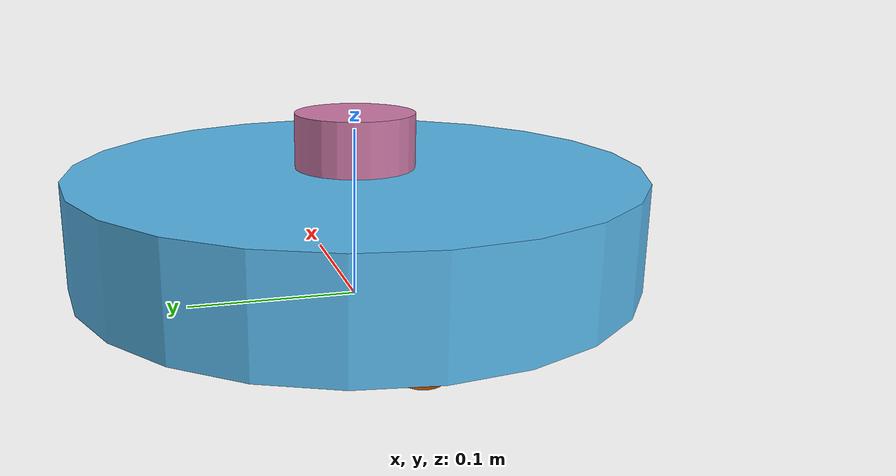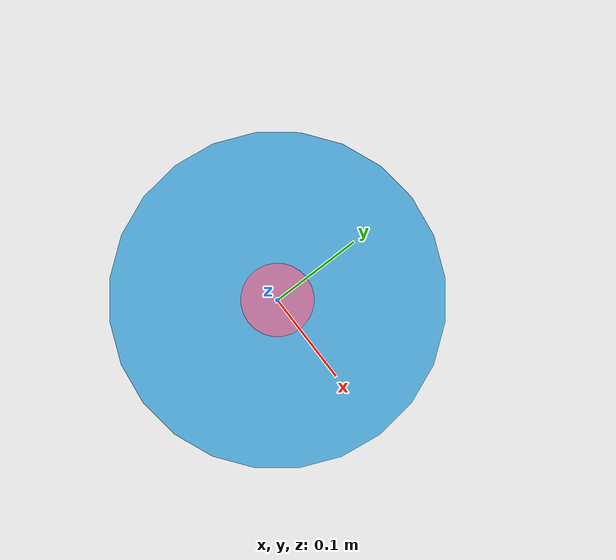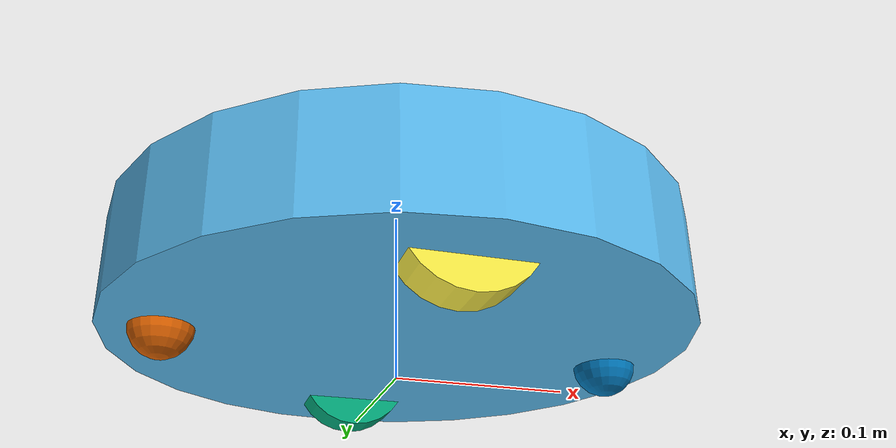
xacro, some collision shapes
<?xml version="1.0"?>
<robot name="roomba" xmlns:xacro="http://www.ros.org/wiki/xacro">

  <xacro:property name="PI" value="3.1415926535897931"/>

  <!-- Create 2 OI spec -->
  <xacro:property name="wheel_separation" value="0.235"/>
  <xacro:property name="wheel_radius" value="0.036"/>
  <xacro:property name="wheel_width" value="0.024"/>
  <xacro:property name="wheel_mass" value="0.1"/>

  <xacro:property name="base_radius" value="0.16495"/>
  <xacro:property name="base_height" value="0.0611632"/>
  <xacro:property name="base_mass" value="3.3"/>
  <!-- base_link sits this high above the floor (same as create_description) -->
  <xacro:property name="base_z" value="0.017"/>

  <xacro:property name="caster_radius" value="0.018"/>
  <xacro:property name="caster_x" value="0.13"/>

  <xacro:macro name="cylinder_inertia" params="m r h">
    <inertia ixx="${m * (3 * r * r + h * h) / 12}" ixy="0" ixz="0"
             iyy="${m * (3 * r * r + h * h) / 12}" iyz="0"
             izz="${m * r * r / 2}"/>
  </xacro:macro>

  <link name="base_footprint"/>

  <link name="base_link">
    <inertial>
      <origin xyz="0 0 ${base_height / 2}"/>
      <mass value="${base_mass}"/>
      <xacro:cylinder_inertia m="${base_mass}" r="${base_radius}" h="${base_height}"/>
    </inertial>
    <visual>
      <origin xyz="0 0 0.0308"/>
      <geometry>
        <mesh filename="package://create_description/meshes/create_2.dae"/>
      </geometry>
    </visual>
    <collision>
      <origin xyz="0 0 0.0308"/>
      <geometry>
        <cylinder radius="${base_radius}" length="${base_height}"/>
      </geometry>
    </collision>
  </link>

  <joint name="base_footprint_joint" type="fixed">
    <origin xyz="0 0 ${base_z}"/>
    <parent link="base_footprint"/>
    <child link="base_link"/>
  </joint>

  <xacro:macro name="drive_wheel" params="prefix y">
    <link name="${prefix}_wheel_link">
      <inertial>
        <mass value="${wheel_mass}"/>
        <!-- cylinder axis is along y after the visual rotation -->
        <inertia ixx="${wheel_mass * (3 * wheel_radius * wheel_radius + wheel_width * wheel_width) / 12}"
                 ixy="0" ixz="0"
                 iyy="${wheel_mass * wheel_radius * wheel_radius / 2}" iyz="0"
                 izz="${wheel_mass * (3 * wheel_radius * wheel_radius + wheel_width * wheel_width) / 12}"/>
      </inertial>
      <visual>
        <origin rpy="${PI / 2} 0 0"/>
        <geometry>
          <cylinder radius="${wheel_radius}" length="${wheel_width}"/>
        </geometry>
      </visual>
      <collision>
        <geometry>
          <sphere radius="${wheel_radius}"/>
        </geometry>
      </collision>
    </link>

    <joint name="${prefix}_wheel_joint" type="continuous">
      <origin xyz="0 ${y} ${wheel_radius - base_z}"/>
      <parent link="base_link"/>
      <child link="${prefix}_wheel_link"/>
      <axis xyz="0 1 0"/>
    </joint>

    <gazebo reference="${prefix}_wheel_link">
      <mu1>1.0</mu1>
      <mu2>1.0</mu2>
    </gazebo>
  </xacro:macro>

  <xacro:drive_wheel prefix="left" y="${wheel_separation / 2}"/>
  <xacro:drive_wheel prefix="right" y="${-wheel_separation / 2}"/>

  <!-- Frictionless spheres front and rear keep the body level -->
  <xacro:macro name="caster" params="prefix x">
    <link name="${prefix}_caster_link">
      <inertial>
        <mass value="0.01"/>
        <inertia ixx="1e-6" ixy="0" ixz="0" iyy="1e-6" iyz="0" izz="1e-6"/>
      </inertial>
      <visual>
        <geometry>
          <sphere radius="${caster_radius}"/>
        </geometry>
      </visual>
      <collision>
        <geometry>
          <sphere radius="${caster_radius}"/>
        </geometry>
      </collision>
    </link>

    <joint name="${prefix}_caster_joint" type="fixed">
      <origin xyz="${x} 0 ${caster_radius - base_z}"/>
      <parent link="base_link"/>
      <child link="${prefix}_caster_link"/>
    </joint>

    <gazebo reference="${prefix}_caster_link">
      <mu1>0.0</mu1>
      <mu2>0.0</mu2>
    </gazebo>
  </xacro:macro>

  <xacro:caster prefix="front" x="${caster_x}"/>
  <xacro:caster prefix="rear" x="${-caster_x}"/>

  <!-- YDLIDAR X4 Pro: 360 deg, 0.12-10 m, ~5k samples/s. Mount pose is a placeholder
       until the 3D-printed mount exists; measure it and update these. -->
  <xacro:property name="laser_x" value="0.0"/>
  <xacro:property name="laser_z" value="0.11"/>
  <xacro:property name="laser_rate" value="7"/>
  <xacro:property name="laser_samples" value="720"/>

  <link name="laser_link">
    <inertial>
      <mass value="0.18"/>
      <inertia ixx="1e-4" ixy="0" ixz="0" iyy="1e-4" iyz="0" izz="1e-4"/>
    </inertial>
    <visual>
      <origin xyz="0 0 -0.017"/>
      <geometry>
        <cylinder radius="0.035" length="0.034"/>
      </geometry>
    </visual>
    <collision>
      <origin xyz="0 0 -0.017"/>
      <geometry>
        <cylinder radius="0.035" length="0.034"/>
      </geometry>
    </collision>
  </link>

  <joint name="laser_joint" type="fixed">
    <origin xyz="${laser_x} 0 ${laser_z - base_z}"/>
    <parent link="base_link"/>
    <child link="laser_link"/>
  </joint>

  <gazebo reference="laser_link">
    <sensor name="lidar" type="gpu_lidar">
      <ignition_frame_id>laser_link</ignition_frame_id>
      <topic>/scan</topic>
      <update_rate>${laser_rate}</update_rate>
      <always_on>true</always_on>
      <visualize>false</visualize>
      <lidar>
        <scan>
          <horizontal>
            <samples>${laser_samples}</samples>
            <resolution>1</resolution>
            <min_angle>${-PI}</min_angle>
            <max_angle>${PI - 2 * PI / laser_samples}</max_angle>
          </horizontal>
        </scan>
        <range>
          <min>0.12</min>
          <max>10.0</max>
          <resolution>0.01</resolution>
        </range>
        <noise>
          <type>gaussian</type>
          <mean>0.0</mean>
          <stddev>0.01</stddev>
        </noise>
      </lidar>
    </sensor>
  </gazebo>

  <!-- Gazebo-side topics live under /diff_drive and /ground_truth; the launch file's
       bridge decides which of them become /odom and /tf on the ROS side. -->
  <gazebo>
    <plugin filename="ignition-gazebo-diff-drive-system"
            name="ignition::gazebo::systems::DiffDrive">
      <left_joint>left_wheel_joint</left_joint>
      <right_joint>right_wheel_joint</right_joint>
      <wheel_separation>${wheel_separation}</wheel_separation>
      <wheel_radius>${wheel_radius}</wheel_radius>
      <!-- Create 2 OI limit: 500 mm/s per wheel -->
      <max_linear_velocity>0.5</max_linear_velocity>
      <topic>/cmd_vel</topic>
      <odom_topic>/diff_drive/odom</odom_topic>
      <tf_topic>/diff_drive/tf</tf_topic>
      <frame_id>odom</frame_id>
      <child_frame_id>base_footprint</child_frame_id>
      <odom_publish_frequency>50</odom_publish_frequency>
    </plugin>

    <!-- True pose from the physics engine, for judging odometry error. The robot is
         spawned at the world origin, so this is also relative to the start pose. -->
    <plugin filename="ignition-gazebo-odometry-publisher-system"
            name="ignition::gazebo::systems::OdometryPublisher">
      <odom_frame>odom</odom_frame>
      <robot_base_frame>base_footprint</robot_base_frame>
      <odom_topic>/ground_truth/odom</odom_topic>
      <tf_topic>/ground_truth/tf</tf_topic>
      <odom_publish_frequency>50</odom_publish_frequency>
      <dimensions>2</dimensions>
    </plugin>

    <plugin filename="ignition-gazebo-joint-state-publisher-system"
            name="ignition::gazebo::systems::JointStatePublisher">
      <topic>/joint_states</topic>
    </plugin>
  </gazebo>

</robot>
